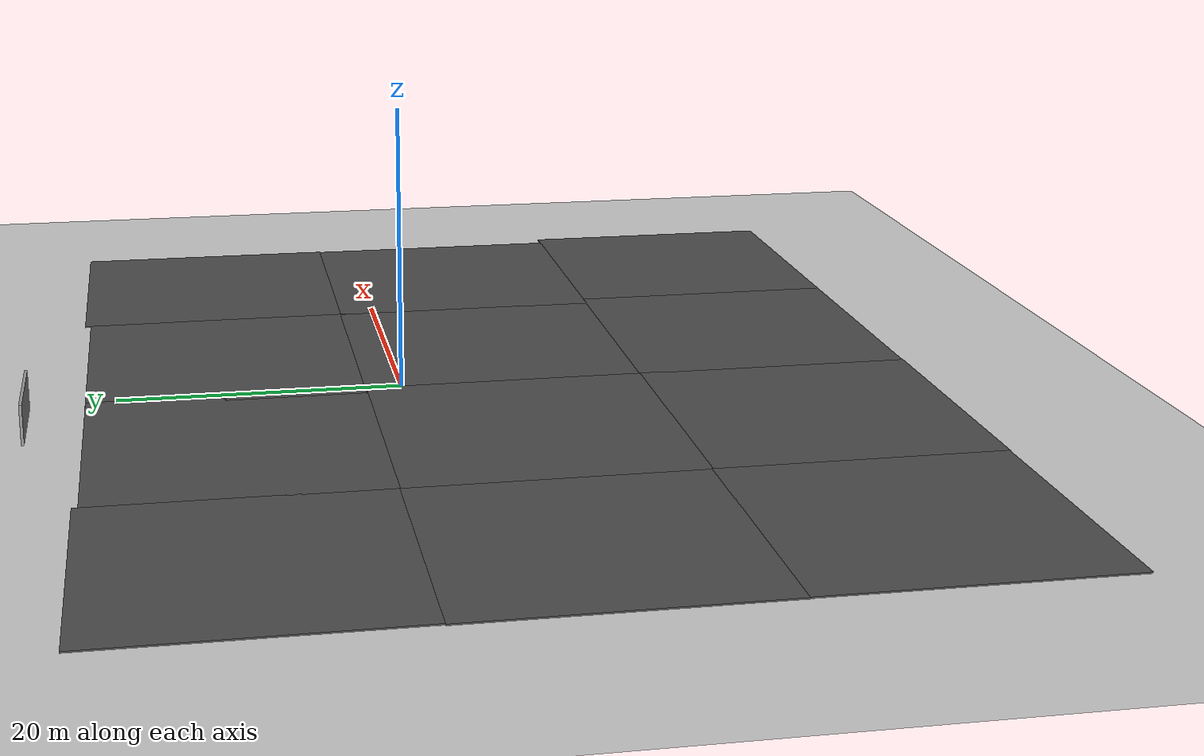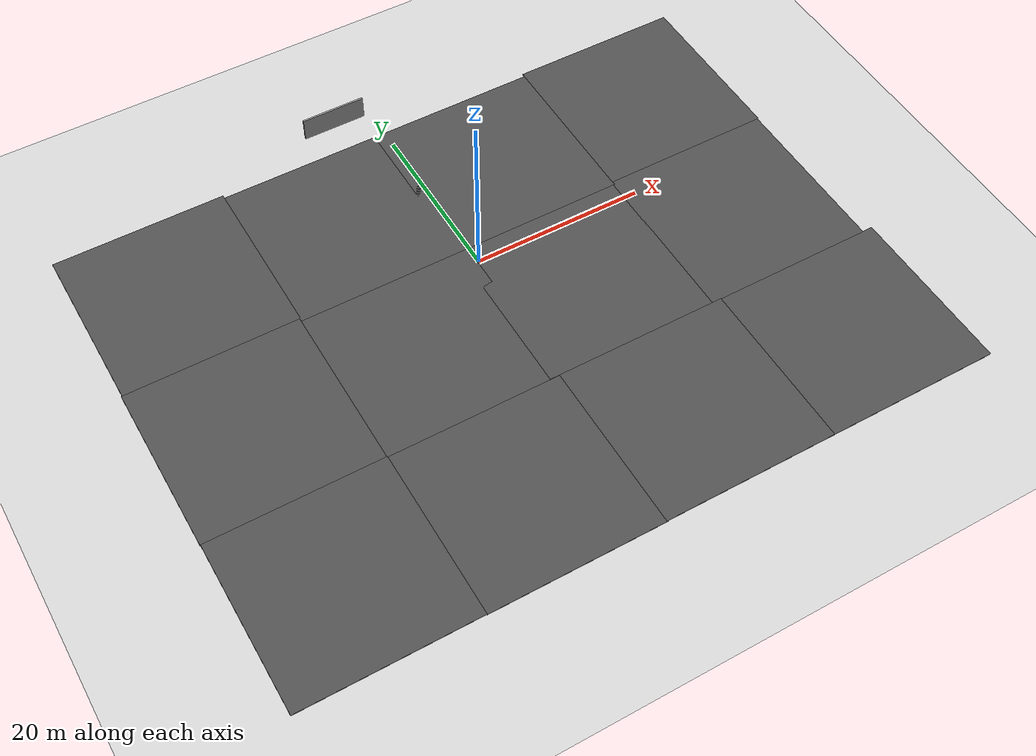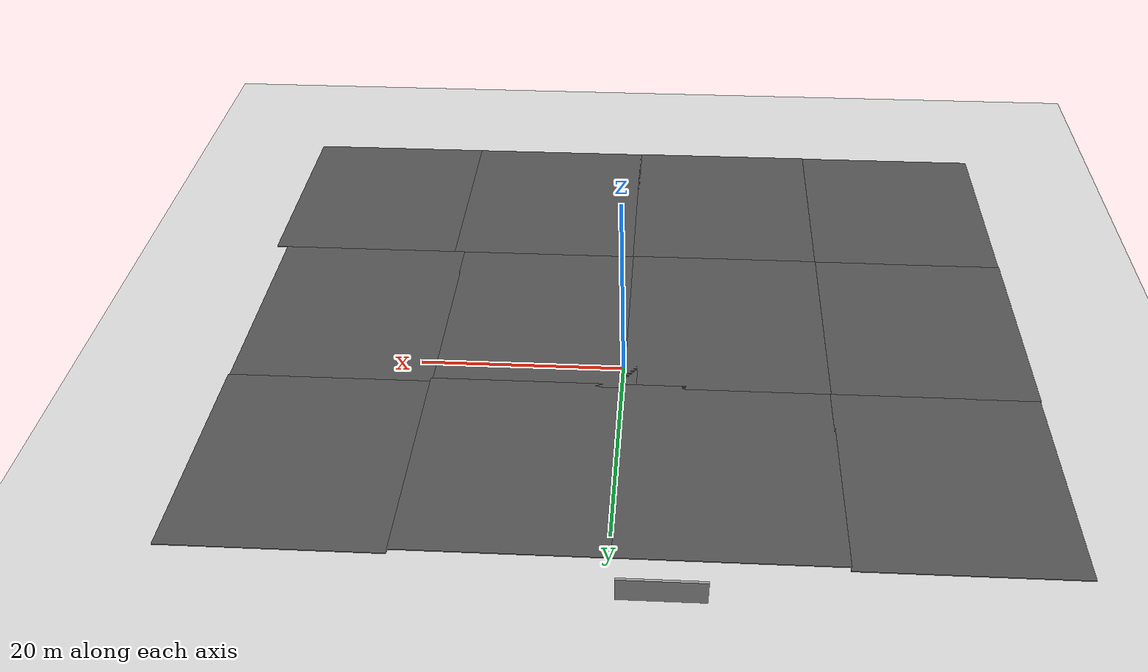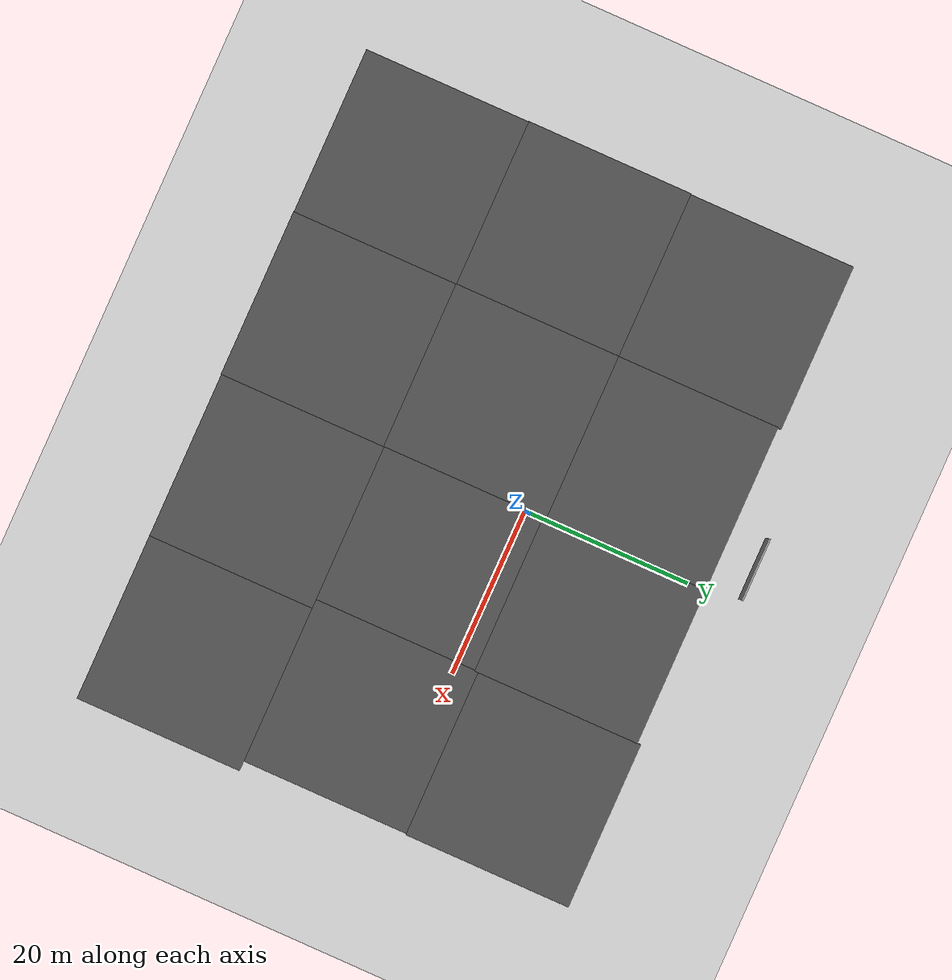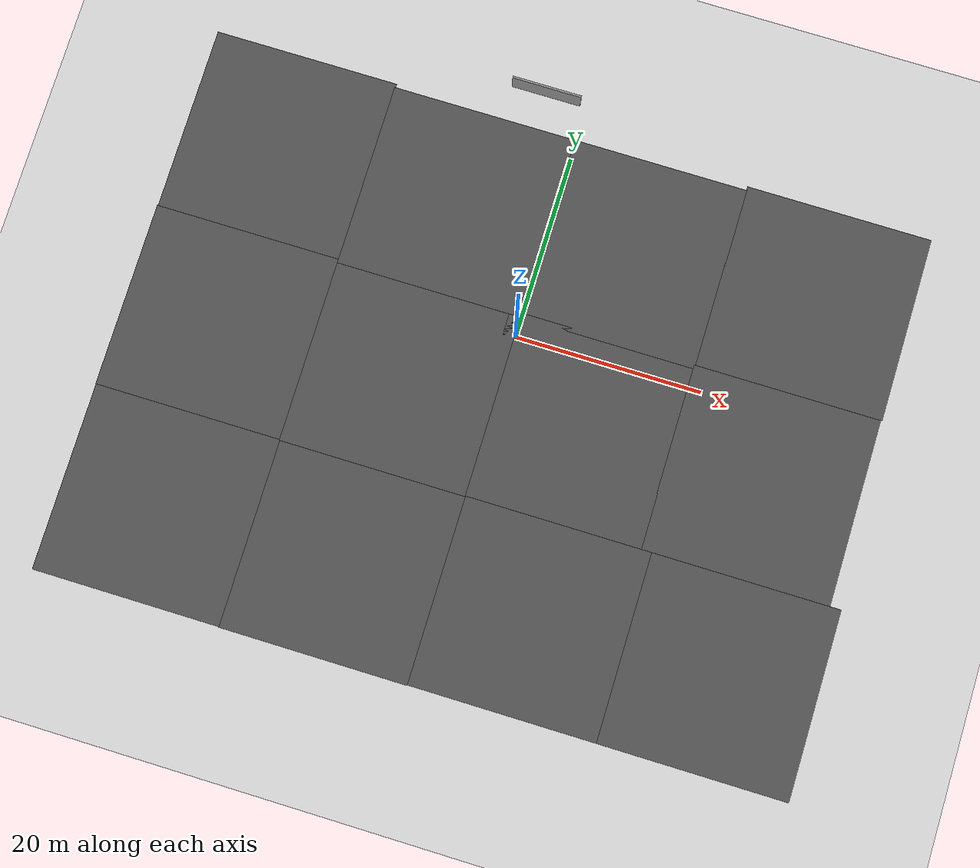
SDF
<sdf version="1.7">
 <world name="default">
  <model name="ground_plane">
   <static>1</static>
   <link name="link">
    <collision name="collision">
     <geometry><plane><normal>0 0 1</normal><size>100 100</size></plane></geometry>
     <surface><friction><ode><mu>100</mu><mu2>50</mu2></ode></friction></surface>
    </collision>
    <visual name="visual">
     <cast_shadows>0</cast_shadows>
     <geometry><plane><normal>0 0 1</normal><size>100 100</size></plane></geometry>
     <material>
      <script><uri>file://media/materials/scripts/gazebo.material</uri><name>Gazebo/Grey</name></script>
     </material>
    </visual>
   </link>
  </model>
  <model name="asphalt_plane">
   <static>1</static>
   <link name="link">
    <collision name="collision">
     <geometry><box><size>20 20 0.1</size></box></geometry>
     <surface><friction><ode><mu>100</mu><mu2>50</mu2></ode></friction></surface>
    </collision>
    <visual name="visual">
     <cast_shadows>0</cast_shadows>
     <geometry><box><size>20 20 0.1</size></box></geometry>
     <material>
      <script>
       <uri>model://asphalt_plane/materials/scripts</uri>
       <uri>model://asphalt_plane/materials/textures</uri>
       <name>vrc/asphalt</name>
      </script>
     </material>
    </visual>
   </link>
   <pose>-10.1692 -7.43707 0 0 -0 0</pose>
  </model>
  <model name="asphalt_plane_clone">
   <static>1</static>
   <link name="link">
    <collision name="collision">
     <geometry><box><size>20 20 0.1</size></box></geometry>
     <surface><friction><ode><mu>100</mu><mu2>50</mu2></ode></friction></surface>
    </collision>
    <visual name="visual">
     <cast_shadows>0</cast_shadows>
     <geometry><box><size>20 20 0.1</size></box></geometry>
     <material>
      <script>
       <uri>model://asphalt_plane/materials/scripts</uri>
       <uri>model://asphalt_plane/materials/textures</uri>
       <name>vrc/asphalt</name>
      </script>
     </material>
    </visual>
   </link>
   <pose>-10.1603 12.171 0 0 -0 0</pose>
  </model>
  <model name="asphalt_plane_clone_clone">
   <static>1</static>
   <link name="link">
    <collision name="collision">
     <geometry><box><size>20 20 0.1</size></box></geometry>
     <surface><friction><ode><mu>100</mu><mu2>50</mu2></ode></friction></surface>
    </collision>
    <visual name="visual">
     <cast_shadows>0</cast_shadows>
     <geometry><box><size>20 20 0.1</size></box></geometry>
     <material>
      <script>
       <uri>model://asphalt_plane/materials/scripts</uri>
       <uri>model://asphalt_plane/materials/textures</uri>
       <name>vrc/asphalt</name>
      </script>
     </material>
    </visual>
   </link>
   <pose>8.71597 12.1785 0 0 -0 0</pose>
  </model>
  <model name="asphalt_plane_clone_clone_0">
   <static>1</static>
   <link name="link">
    <collision name="collision">
     <geometry><box><size>20 20 0.1</size></box></geometry>
     <surface><friction><ode><mu>100</mu><mu2>50</mu2></ode></friction></surface>
    </collision>
    <visual name="visual">
     <cast_shadows>0</cast_shadows>
     <geometry><box><size>20 20 0.1</size></box></geometry>
     <material>
      <script>
       <uri>model://asphalt_plane/materials/scripts</uri>
       <uri>model://asphalt_plane/materials/textures</uri>
       <name>vrc/asphalt</name>
      </script>
     </material>
    </visual>
   </link>
   <pose>8.60996 -7.34898 0 0 -0 0</pose>
  </model>
  <model name="grey_wall_clone_clone">
   <static>1</static>
   <link name="link">
    <pose>0 0 1.4 0 -0 0</pose>
    <collision name="collision"><geometry><box><size>7.5 0.2 2.8</size></box></geometry></collision>
    <visual name="visual">
     <cast_shadows>0</cast_shadows>
     <geometry><box><size>7.5 0.2 2.8</size></box></geometry>
     <material>
      <script>
       <uri>model://grey_wall/materials/scripts</uri>
       <uri>model://grey_wall/materials/textures</uri>
       <name>vrc/grey_wall</name>
      </script>
     </material>
    </visual>
   </link>
   <pose>-4.48764 26.0166 0 0 -0 0</pose>
  </model>
  <light name="sun" type="directional">
   <pose>0 0 10 0 -0 0</pose>
   <diffuse>0.8 0.8 0.8 1</diffuse>
   <specular>0.2 0.2 0.2 1</specular>
   <attenuation>
    <range>1000</range>
    <constant>0.9</constant>
    <linear>0.01</linear>
    <quadratic>0.001</quadratic>
   </attenuation>
   <direction>-0.5 0.1 -0.9</direction>
   <spot><inner_angle>0</inner_angle><outer_angle>0</outer_angle><falloff>0</falloff></spot>
  </light>
  <gravity>0 0 -9.8</gravity>
  <magnetic_field>6e-06 2.3e-05 -4.2e-05</magnetic_field>
  <atmosphere type="adiabatic"/>
  <physics name="default_physics" default="0" type="ode">
   <max_step_size>0.001</max_step_size>
   <real_time_factor>1</real_time_factor>
   <real_time_update_rate>1000</real_time_update_rate>
  </physics>
  <scene><ambient>0.4 0.4 0.4 1</ambient><background>0.7 0.7 0.7 1</background><shadows>1</shadows></scene>
  <audio><device>default</device></audio>
  <spherical_coordinates>
   <surface_model>EARTH_WGS84</surface_model>
   <latitude_deg>47.8406</latitude_deg>
   <longitude_deg>10.6199</longitude_deg>
   <elevation>740</elevation>
   <heading_deg>180</heading_deg>
  </spherical_coordinates>
  <model name="asphalt_plane_clone_0">
   <static>1</static>
   <link name="link">
    <collision name="collision">
     <geometry><box><size>20 20 0.1</size></box></geometry>
     <surface><friction><ode><mu>100</mu><mu2>50</mu2></ode></friction></surface>
    </collision>
    <visual name="visual">
     <cast_shadows>0</cast_shadows>
     <geometry><box><size>20 20 0.1</size></box></geometry>
     <material>
      <script>
       <uri>model://asphalt_plane/materials/scripts</uri>
       <uri>model://asphalt_plane/materials/textures</uri>
       <name>vrc/asphalt</name>
      </script>
     </material>
    </visual>
   </link>
   <pose>-10.1319 -27.4052 0 0 -0 0</pose>
  </model>
  <model name="asphalt_plane_clone_0_clone">
   <static>1</static>
   <link name="link">
    <collision name="collision">
     <geometry><box><size>20 20 0.1</size></box></geometry>
     <surface><friction><ode><mu>100</mu><mu2>50</mu2></ode></friction></surface>
    </collision>
    <visual name="visual">
     <cast_shadows>0</cast_shadows>
     <geometry><box><size>20 20 0.1</size></box></geometry>
     <material>
      <script>
       <uri>model://asphalt_plane/materials/scripts</uri>
       <uri>model://asphalt_plane/materials/textures</uri>
       <name>vrc/asphalt</name>
      </script>
     </material>
    </visual>
   </link>
   <pose>9.70588 -27.3463 0 0 -0 0</pose>
  </model>
  <model name="asphalt_plane_clone_clone_clone">
   <static>1</static>
   <link name="link">
    <collision name="collision">
     <geometry><box><size>20 20 0.1</size></box></geometry>
     <surface><friction><ode><mu>100</mu><mu2>50</mu2></ode></friction></surface>
    </collision>
    <visual name="visual">
     <cast_shadows>0</cast_shadows>
     <geometry><box><size>20 20 0.1</size></box></geometry>
     <material>
      <script>
       <uri>model://asphalt_plane/materials/scripts</uri>
       <uri>model://asphalt_plane/materials/textures</uri>
       <name>vrc/asphalt</name>
      </script>
     </material>
    </visual>
   </link>
   <pose>29.7009 -27.347 0 0 -0 0</pose>
  </model>
  <model name="asphalt_plane_clone_clone_clone_clone">
   <static>1</static>
   <link name="link">
    <collision name="collision">
     <geometry><box><size>20 20 0.1</size></box></geometry>
     <surface><friction><ode><mu>100</mu><mu2>50</mu2></ode></friction></surface>
    </collision>
    <visual name="visual">
     <cast_shadows>0</cast_shadows>
     <geometry><box><size>20 20 0.1</size></box></geometry>
     <material>
      <script>
       <uri>model://asphalt_plane/materials/scripts</uri>
       <uri>model://asphalt_plane/materials/textures</uri>
       <name>vrc/asphalt</name>
      </script>
     </material>
    </visual>
   </link>
   <pose>28.5177 -7.38977 0 0 -0 0</pose>
  </model>
  <model name="asphalt_plane_clone_clone_clone_clone_clone">
   <static>1</static>
   <link name="link">
    <collision name="collision">
     <geometry><box><size>20 20 0.1</size></box></geometry>
     <surface><friction><ode><mu>100</mu><mu2>50</mu2></ode></friction></surface>
    </collision>
    <visual name="visual">
     <cast_shadows>0</cast_shadows>
     <geometry><box><size>20 20 0.1</size></box></geometry>
     <material>
      <script>
       <uri>model://asphalt_plane/materials/scripts</uri>
       <uri>model://asphalt_plane/materials/textures</uri>
       <name>vrc/asphalt</name>
      </script>
     </material>
    </visual>
   </link>
   <pose>28.6552 12.6044 0 0 -0 0</pose>
  </model>
  <model name="asphalt_plane_clone_1">
   <static>1</static>
   <link name="link">
    <collision name="collision">
     <geometry><box><size>20 20 0.1</size></box></geometry>
     <surface><friction><ode><mu>100</mu><mu2>50</mu2></ode></friction></surface>
    </collision>
    <visual name="visual">
     <cast_shadows>0</cast_shadows>
     <geometry><box><size>20 20 0.1</size></box></geometry>
     <material>
      <script>
       <uri>model://asphalt_plane/materials/scripts</uri>
       <uri>model://asphalt_plane/materials/textures</uri>
       <name>vrc/asphalt</name>
      </script>
     </material>
    </visual>
   </link>
   <pose>-30.0584 12.5613 0 0 -0 0</pose>
  </model>
  <model name="asphalt_plane_clone_1_clone">
   <static>1</static>
   <link name="link">
    <collision name="collision">
     <geometry><box><size>20 20 0.1</size></box></geometry>
     <surface><friction><ode><mu>100</mu><mu2>50</mu2></ode></friction></surface>
    </collision>
    <visual name="visual">
     <cast_shadows>0</cast_shadows>
     <geometry><box><size>20 20 0.1</size></box></geometry>
     <material>
      <script>
       <uri>model://asphalt_plane/materials/scripts</uri>
       <uri>model://asphalt_plane/materials/textures</uri>
       <name>vrc/asphalt</name>
      </script>
     </material>
    </visual>
   </link>
   <pose>-30.1524 -7.3896 0 0 -0 0</pose>
  </model>
  <model name="asphalt_plane_clone_1_clone_clone">
   <static>1</static>
   <link name="link">
    <collision name="collision">
     <geometry><box><size>20 20 0.1</size></box></geometry>
     <surface><friction><ode><mu>100</mu><mu2>50</mu2></ode></friction></surface>
    </collision>
    <visual name="visual">
     <cast_shadows>0</cast_shadows>
     <geometry><box><size>20 20 0.1</size></box></geometry>
     <material>
      <script>
       <uri>model://asphalt_plane/materials/scripts</uri>
       <uri>model://asphalt_plane/materials/textures</uri>
       <name>vrc/asphalt</name>
      </script>
     </material>
    </visual>
   </link>
   <pose>-30.0983 -27.3526 0 0 -0 0</pose>
  </model>
 </world>
</sdf>
